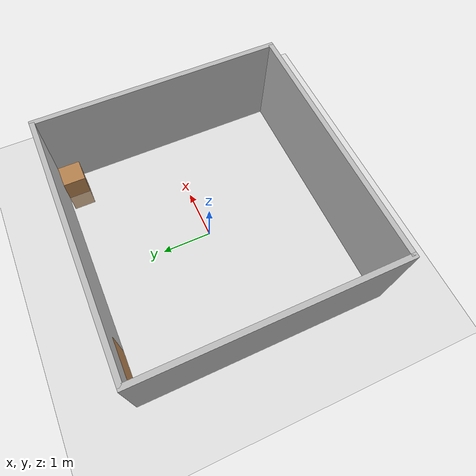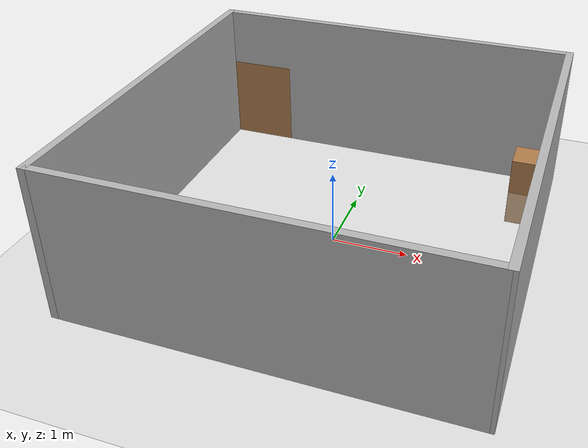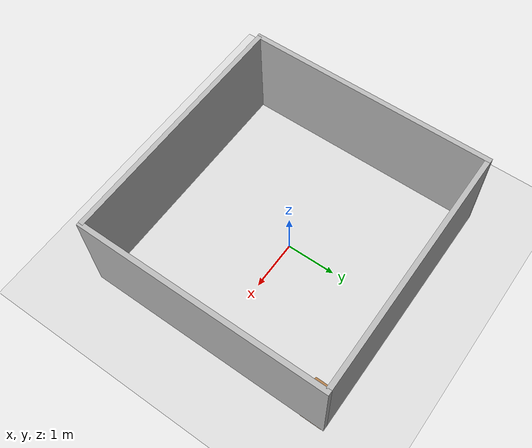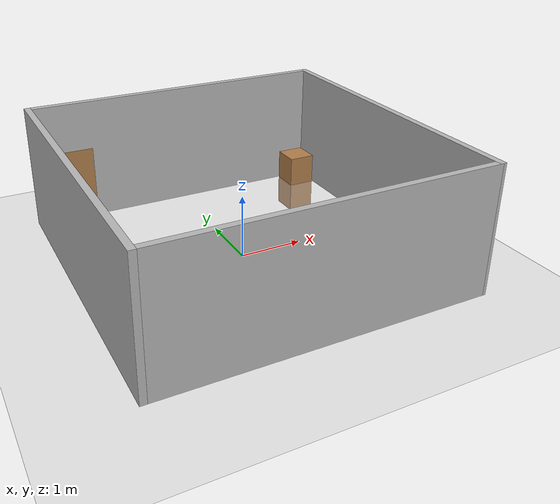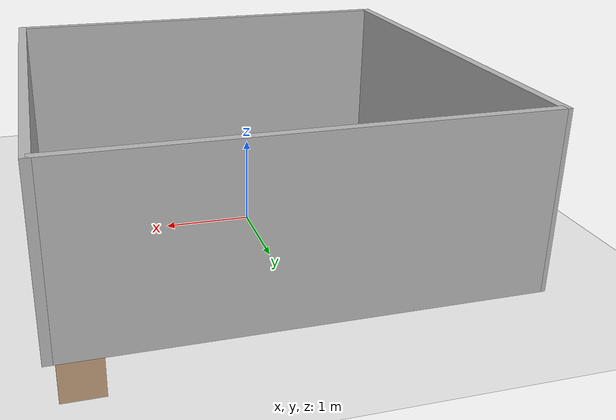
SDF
<sdf version="1.7">
 <world name="default">
  <light name="sun" type="directional">
   <pose>0 0 10 0 -0 0</pose>
   <diffuse>0.8 0.8 0.8 1</diffuse>
   <specular>0.2 0.2 0.2 1</specular>
   <direction>-0.5 0.1 -0.9</direction>
  </light>
  <gravity>0 0 -9.8</gravity>
  <physics type="ode">
   <max_step_size>0.001</max_step_size>
   <real_time_factor>1</real_time_factor>
   <real_time_update_rate>1000</real_time_update_rate>
  </physics>
  <model name="ground_plane">
   <static>1</static>
   <link name="link">
    <collision name="collision">
     <geometry><plane><normal>0 0 1</normal><size>100 100</size></plane></geometry>
    </collision>
    <visual name="visual">
     <geometry><plane><normal>0 0 1</normal><size>1 1</size></plane></geometry>
     <material>
      <script><uri>file://media/materials/scripts/gazebo.material</uri><name>Gazebo/Grey</name></script>
     </material>
    </visual>
   </link>
  </model>
  <model name="room_wall_2x5">
   <static>1</static>
   <pose>-2.5 0 1 0 -0 0</pose>
   <link name="link">
    <collision name="c"><geometry><box><size>0.1 5 2</size></box></geometry></collision>
    <visual name="v"><geometry><box><size>0.1 5 2</size></box></geometry></visual>
   </link>
  </model>
  <model name="room_wall_2x5_0">
   <static>1</static>
   <pose>2.5 0 1 0 -0 0</pose>
   <link name="link">
    <collision name="c"><geometry><box><size>0.1 5 2</size></box></geometry></collision>
    <visual name="v"><geometry><box><size>0.1 5 2</size></box></geometry></visual>
   </link>
  </model>
  <model name="room_wall_2x5_1">
   <static>1</static>
   <pose>0 -2.45 1 0 -0 1.5707</pose>
   <link name="link">
    <collision name="c"><geometry><box><size>0.1 5 2</size></box></geometry></collision>
    <visual name="v"><geometry><box><size>0.1 5 2</size></box></geometry></visual>
   </link>
  </model>
  <model name="room_wall_2x5_2">
   <static>1</static>
   <pose>0 2.45 1 0 -0 1.5707</pose>
   <link name="link">
    <collision name="c"><geometry><box><size>0.1 5 2</size></box></geometry></collision>
    <visual name="v"><geometry><box><size>0.1 5 2</size></box></geometry></visual>
   </link>
  </model>
  <model name="Bookshelf">
   <static>1</static>
   <pose>-2 2.4 0 0 -0 0</pose>
   <link name="link">
    <collision name="back">
     <pose>0 0.005 0.6 0 -0 0</pose>
     <geometry><box><size>0.9 0.01 1.2</size></box></geometry>
    </collision>
    <visual name="visual">
     <pose>0 0.005 0.6 0 -0 0</pose>
     <geometry><box><size>0.9 0.01 1.2</size></box></geometry>
     <material>
      <script><uri>file://media/materials/scripts/gazebo.material</uri><name>Gazebo/Wood</name></script>
     </material>
    </visual>
   </link>
  </model>
  <model name="cabinet">
   <static>1</static>
   <pose>2.21 2.17 0 0 -0 1.5707</pose>
   <link name="link">
    <visual name="v">
     <geometry><box><size>0.45 0.45 1.02</size></box></geometry>
     <material>
      <script><uri>file://media/materials/scripts/gazebo.material</uri><name>Gazebo/Wood</name></script>
     </material>
    </visual>
    <collision name="c"><geometry><box><size>0.45 0.45 1.02</size></box></geometry></collision>
   </link>
  </model>
  <model name="living_room"><link name="link"/><static>1</static><pose>-1.83596 1.40391 0 0 -0 0</pose></model>
 </world>
</sdf>
